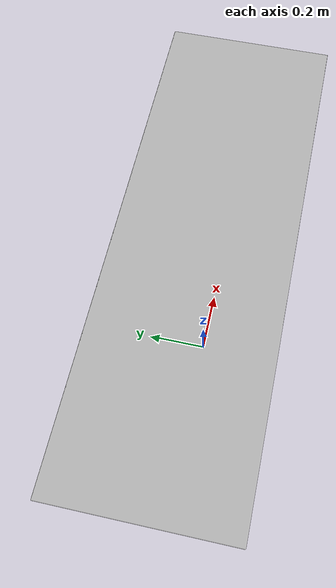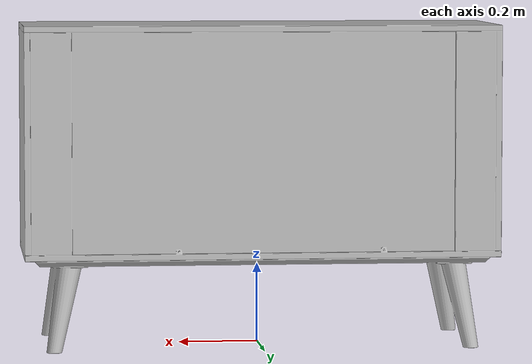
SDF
<sdf version="1.6">
	<model name="AudioVideoMediaCabinets_Ocad952f94422_lod0">
		<link name="main_link">
			<visual name="visual_RootNode">
				<geometry>
					<mesh>
						<uri>model://AudioVideoMediaCabinets_Ocad952f94422_lod0/meshes/visual_RootNode.dae</uri>
					</mesh>
				</geometry>
			</visual>
			<collision name="collision_RootNode_lod0_0">
				<geometry>
					<mesh>
						<uri>model://AudioVideoMediaCabinets_Ocad952f94422_lod0/meshes/collision_RootNode_lod0_0.dae</uri>
					</mesh>
				</geometry>
			</collision>
		</link>
	</model>
</sdf>
